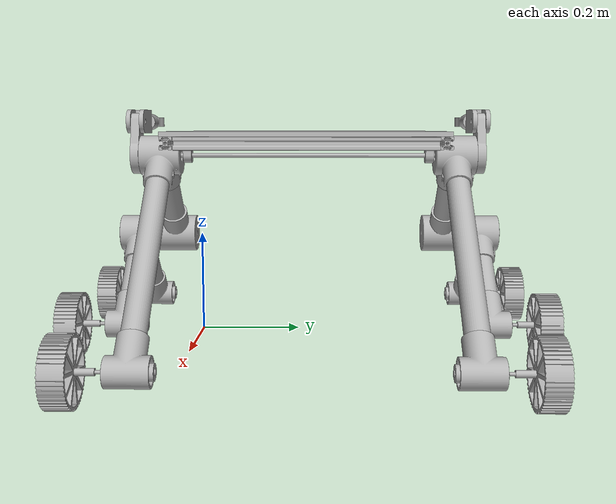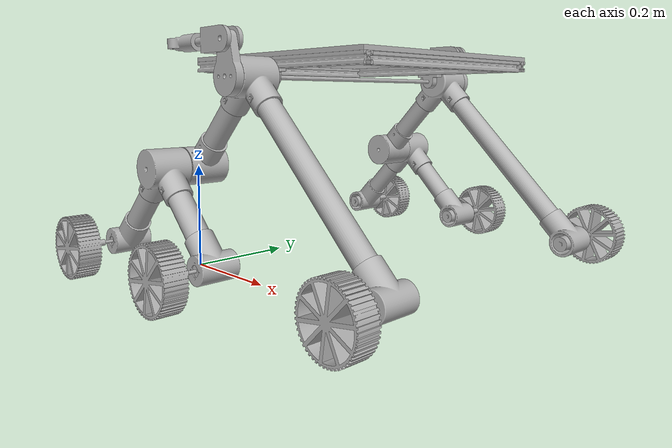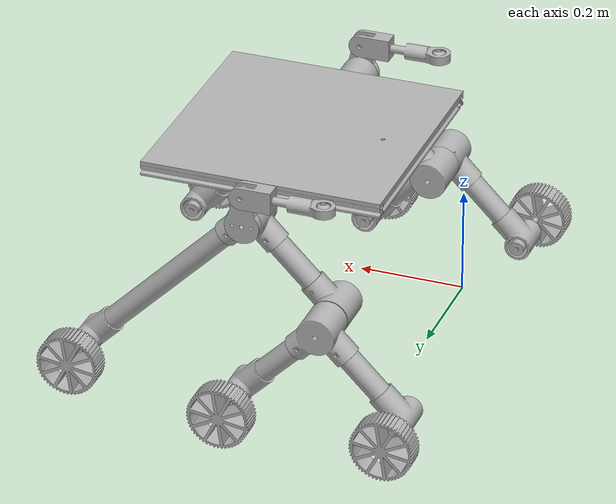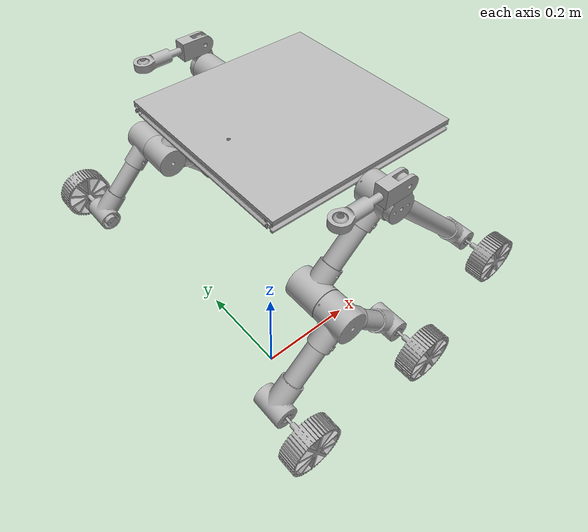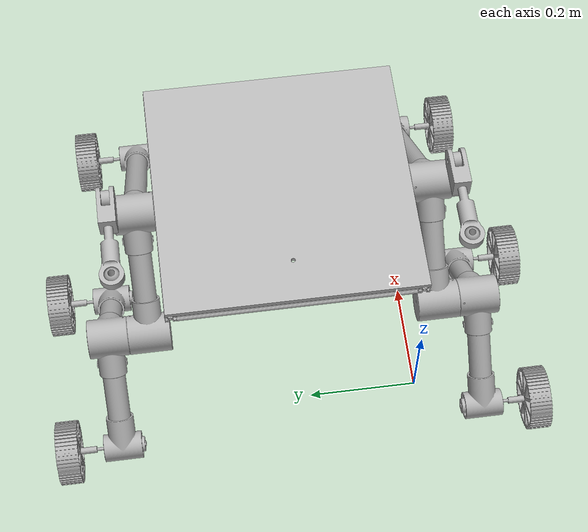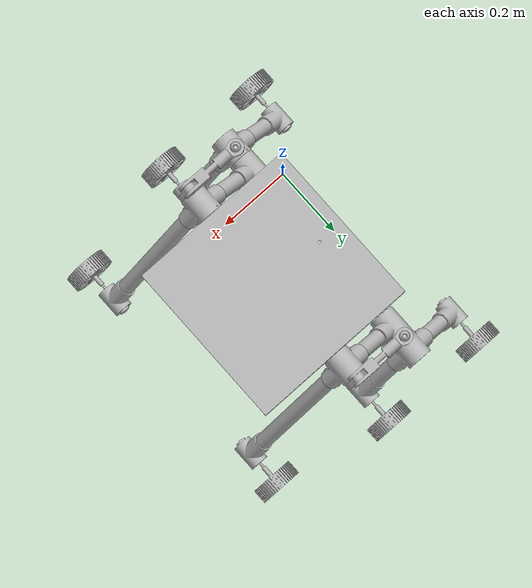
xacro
<?xml version="1.0" ?>
<robot name="urdf_rover_isro" xmlns:xacro="http://www.ros.org/wiki/xacro">

<xacro:include filename="$(find urdf_rover_isro_description)/urdf/materials.xacro" />
<xacro:include filename="$(find urdf_rover_isro_description)/urdf/urdf_rover_isro.trans" />
<xacro:include filename="$(find urdf_rover_isro_description)/urdf/urdf_rover_isro.gazebo" />
<link name="base_link">
  <inertial>
    <origin xyz="0.230216662163733 0.22389389752371083 0.40789724146038964" rpy="0 0 0"/>
    <mass value="12.713843327701671"/>
    <inertia ixx="0.214667" iyy="0.214596" izz="0.429128" ixy="0.0" iyz="-0.0" ixz="0.0"/>
  </inertial>
  <visual>
    <origin xyz="0 0 0" rpy="0 0 0"/>
    <geometry>
      <mesh filename="package://urdf_rover_isro_description/meshes/base_link.stl" scale="0.001 0.001 0.001"/>
    </geometry>
    <material name="silver"/>
  </visual>
  <collision>
    <origin xyz="0 0 0" rpy="0 0 0"/>
    <geometry>
      <mesh filename="package://urdf_rover_isro_description/meshes/base_link.stl" scale="0.001 0.001 0.001"/>
    </geometry>
  </collision>
</link>

<link name="link_1_2_1">
  <inertial>
    <origin xyz="-0.22499959979311035 0.009999796254077679 -0.00999975853961066" rpy="0 0 0"/>
    <mass value="0.1997636911709439"/>
    <inertia ixx="1.7e-05" iyy="0.003379" izz="0.003379" ixy="0.0" iyz="-0.0" ixz="0.0"/>
  </inertial>
  <visual>
    <origin xyz="-0.455179 0.001106 -0.403897" rpy="0 0 0"/>
    <geometry>
      <mesh filename="package://urdf_rover_isro_description/meshes/link_1_2_1.stl" scale="0.001 0.001 0.001"/>
    </geometry>
    <material name="silver"/>
  </visual>
  <collision>
    <origin xyz="-0.455179 0.001106 -0.403897" rpy="0 0 0"/>
    <geometry>
      <mesh filename="package://urdf_rover_isro_description/meshes/link_1_2_1.stl" scale="0.001 0.001 0.001"/>
    </geometry>
  </collision>
</link>

<link name="link_1_1_1">
  <inertial>
    <origin xyz="-0.2249995997931103 -0.00900020374591426 -0.00999975853961027" rpy="0 0 0"/>
    <mass value="0.1997636911709439"/>
    <inertia ixx="1.7e-05" iyy="0.003379" izz="0.003379" ixy="0.0" iyz="-0.0" ixz="-0.0"/>
  </inertial>
  <visual>
    <origin xyz="-0.455179 -0.448894 -0.403897" rpy="0 0 0"/>
    <geometry>
      <mesh filename="package://urdf_rover_isro_description/meshes/link_1_1_1.stl" scale="0.001 0.001 0.001"/>
    </geometry>
    <material name="silver"/>
  </visual>
  <collision>
    <origin xyz="-0.455179 -0.448894 -0.403897" rpy="0 0 0"/>
    <geometry>
      <mesh filename="package://urdf_rover_isro_description/meshes/link_1_1_1.stl" scale="0.001 0.001 0.001"/>
    </geometry>
  </collision>
</link>

<link name="link_2_1_1">
  <inertial>
    <origin xyz="-0.010292493011922532 -0.20500020374591776 -0.009706865320796954" rpy="0 0 0"/>
    <mass value="0.18200691862241553"/>
    <inertia ixx="0.002557" iyy="1.5e-05" izz="0.002557" ixy="0.0" iyz="-0.0" ixz="0.0"/>
  </inertial>
  <visual>
    <origin xyz="-0.455179 -0.429894 -0.402897" rpy="0 0 0"/>
    <geometry>
      <mesh filename="package://urdf_rover_isro_description/meshes/link_2_1_1.stl" scale="0.001 0.001 0.001"/>
    </geometry>
    <material name="silver"/>
  </visual>
  <collision>
    <origin xyz="-0.455179 -0.429894 -0.402897" rpy="0 0 0"/>
    <geometry>
      <mesh filename="package://urdf_rover_isro_description/meshes/link_2_1_1.stl" scale="0.001 0.001 0.001"/>
    </geometry>
  </collision>
</link>

<link name="link_2_2_1">
  <inertial>
    <origin xyz="0.010007506988074991 -0.20500020374591507 0.0037073482415758696" rpy="0 0 0"/>
    <mass value="0.18200691862241553"/>
    <inertia ixx="0.002557" iyy="1.5e-05" izz="0.002557" ixy="0.0" iyz="0.0" ixz="0.0"/>
  </inertial>
  <visual>
    <origin xyz="-0.005179 -0.429894 -0.389097" rpy="0 0 0"/>
    <geometry>
      <mesh filename="package://urdf_rover_isro_description/meshes/link_2_2_1.stl" scale="0.001 0.001 0.001"/>
    </geometry>
    <material name="silver"/>
  </visual>
  <collision>
    <origin xyz="-0.005179 -0.429894 -0.389097" rpy="0 0 0"/>
    <geometry>
      <mesh filename="package://urdf_rover_isro_description/meshes/link_2_2_1.stl" scale="0.001 0.001 0.001"/>
    </geometry>
  </collision>
</link>

<link name="link_3_1_1">
  <inertial>
    <origin xyz="4.002068623720767e-07 0.00025419193953859706 -0.017105420649761116" rpy="0 0 0"/>
    <mass value="0.08766228088145767"/>
    <inertia ixx="7e-06" iyy="1.6e-05" izz="1.2e-05" ixy="-0.0" iyz="-0.0" ixz="-0.0"/>
  </inertial>
  <visual>
    <origin xyz="-0.230179 -0.008594 -0.389897" rpy="0 0 0"/>
    <geometry>
      <mesh filename="package://urdf_rover_isro_description/meshes/link_3_1_1.stl" scale="0.001 0.001 0.001"/>
    </geometry>
    <material name="silver"/>
  </visual>
  <collision>
    <origin xyz="-0.230179 -0.008594 -0.389897" rpy="0 0 0"/>
    <geometry>
      <mesh filename="package://urdf_rover_isro_description/meshes/link_3_1_1.stl" scale="0.001 0.001 0.001"/>
    </geometry>
  </collision>
</link>

<link name="link_3_2_1">
  <inertial>
    <origin xyz="4.0020686253861015e-07 -0.0014951381464530233 -0.017105420649760894" rpy="0 0 0"/>
    <mass value="0.08766228088145767"/>
    <inertia ixx="7e-06" iyy="1.6e-05" izz="1.2e-05" ixy="-0.0" iyz="-0.0" ixz="-0.0"/>
  </inertial>
  <visual>
    <origin xyz="-0.230179 -0.441513 -0.389897" rpy="0 0 0"/>
    <geometry>
      <mesh filename="package://urdf_rover_isro_description/meshes/link_3_2_1.stl" scale="0.001 0.001 0.001"/>
    </geometry>
    <material name="silver"/>
  </visual>
  <collision>
    <origin xyz="-0.230179 -0.441513 -0.389897" rpy="0 0 0"/>
    <geometry>
      <mesh filename="package://urdf_rover_isro_description/meshes/link_3_2_1.stl" scale="0.001 0.001 0.001"/>
    </geometry>
  </collision>
</link>

<link name="link_4_1">
  <inertial>
    <origin xyz="-0.0015935997931103008 -0.010179203745922655 0.3538972414603902" rpy="0 0 0"/>
    <mass value="0.2367504223745268"/>
    <inertia ixx="0.007103" iyy="2e-06" izz="0.007103" ixy="0.0" iyz="-0.0" ixz="0.0"/>
  </inertial>
  <visual>
    <origin xyz="-0.231773 -0.231773 -0.015" rpy="0 0 0"/>
    <geometry>
      <mesh filename="package://urdf_rover_isro_description/meshes/link_4_1.stl" scale="0.001 0.001 0.001"/>
    </geometry>
    <material name="silver"/>
  </visual>
  <collision>
    <origin xyz="-0.231773 -0.231773 -0.015" rpy="0 0 0"/>
    <geometry>
      <mesh filename="package://urdf_rover_isro_description/meshes/link_4_1.stl" scale="0.001 0.001 0.001"/>
    </geometry>
  </collision>
</link>

<link name="link_5_1_1">
  <inertial>
    <origin xyz="-3.569116684462581e-05 0.0395762497735464 -0.0064987111071231896" rpy="0 0 0"/>
    <mass value="2.6253806933697463"/>
    <inertia ixx="0.002214" iyy="0.002535" izz="0.002323" ixy="0.0" iyz="7e-06" ixz="-2e-06"/>
  </inertial>
  <visual>
    <origin xyz="-0.230179 0.078406 -0.368897" rpy="0 0 0"/>
    <geometry>
      <mesh filename="package://urdf_rover_isro_description/meshes/link_5_1_1.stl" scale="0.001 0.001 0.001"/>
    </geometry>
    <material name="silver"/>
  </visual>
  <collision>
    <origin xyz="-0.230179 0.078406 -0.368897" rpy="0 0 0"/>
    <geometry>
      <mesh filename="package://urdf_rover_isro_description/meshes/link_5_1_1.stl" scale="0.001 0.001 0.001"/>
    </geometry>
  </collision>
</link>

<link name="link_5_2_1">
  <inertial>
    <origin xyz="3.649158062396518e-05 -0.035576657265391665 -0.006498711107121136" rpy="0 0 0"/>
    <mass value="2.6253806933697463"/>
    <inertia ixx="0.002214" iyy="0.002535" izz="0.002323" ixy="0.0" iyz="-7e-06" ixz="2e-06"/>
  </inertial>
  <visual>
    <origin xyz="-0.230179 -0.521594 -0.368897" rpy="0 0 0"/>
    <geometry>
      <mesh filename="package://urdf_rover_isro_description/meshes/link_5_2_1.stl" scale="0.001 0.001 0.001"/>
    </geometry>
    <material name="silver"/>
  </visual>
  <collision>
    <origin xyz="-0.230179 -0.521594 -0.368897" rpy="0 0 0"/>
    <geometry>
      <mesh filename="package://urdf_rover_isro_description/meshes/link_5_2_1.stl" scale="0.001 0.001 0.001"/>
    </geometry>
  </collision>
</link>

<link name="link_6_1_1">
  <inertial>
    <origin xyz="-0.05303265343972052 -3.7337639254009236e-07 -0.0530328121862208" rpy="0 0 0"/>
    <mass value="0.45685433067584397"/>
    <inertia ixx="0.000553" iyy="0.00094" izz="0.000553" ixy="-0.0" iyz="-0.0" ixz="-0.000387"/>
  </inertial>
  <visual>
    <origin xyz="-0.202147 0.038416 -0.340865" rpy="0 0 0"/>
    <geometry>
      <mesh filename="package://urdf_rover_isro_description/meshes/link_6_1_1.stl" scale="0.001 0.001 0.001"/>
    </geometry>
    <material name="silver"/>
  </visual>
  <collision>
    <origin xyz="-0.202147 0.038416 -0.340865" rpy="0 0 0"/>
    <geometry>
      <mesh filename="package://urdf_rover_isro_description/meshes/link_6_1_1.stl" scale="0.001 0.001 0.001"/>
    </geometry>
  </collision>
</link>

<link name="link_6_2_1">
  <inertial>
    <origin xyz="-0.05303335241152124 -1.1893068779800231e-07 -0.05303337962480159" rpy="0 0 0"/>
    <mass value="0.45685433067584397"/>
    <inertia ixx="0.000553" iyy="0.00094" izz="0.000553" ixy="0.0" iyz="-0.0" ixz="-0.000387"/>
  </inertial>
  <visual>
    <origin xyz="-0.202383 -0.485599 -0.340997" rpy="0 0 0"/>
    <geometry>
      <mesh filename="package://urdf_rover_isro_description/meshes/link_6_2_1.stl" scale="0.001 0.001 0.001"/>
    </geometry>
    <material name="silver"/>
  </visual>
  <collision>
    <origin xyz="-0.202383 -0.485599 -0.340997" rpy="0 0 0"/>
    <geometry>
      <mesh filename="package://urdf_rover_isro_description/meshes/link_6_2_1.stl" scale="0.001 0.001 0.001"/>
    </geometry>
  </collision>
</link>

<link name="link_7_1_1">
  <inertial>
    <origin xyz="-0.022490879758291102 -0.000462649270838833 -0.02248793904133345" rpy="0 0 0"/>
    <mass value="2.3993289633379664"/>
    <inertia ixx="0.001993" iyy="0.001802" izz="0.001993" ixy="-2e-06" iyz="-3e-06" ixz="-0.000152"/>
  </inertial>
  <visual>
    <origin xyz="-0.096317 -0.485599 -0.234931" rpy="0 0 0"/>
    <geometry>
      <mesh filename="package://urdf_rover_isro_description/meshes/link_7_1_1.stl" scale="0.001 0.001 0.001"/>
    </geometry>
    <material name="silver"/>
  </visual>
  <collision>
    <origin xyz="-0.096317 -0.485599 -0.234931" rpy="0 0 0"/>
    <geometry>
      <mesh filename="package://urdf_rover_isro_description/meshes/link_7_1_1.stl" scale="0.001 0.001 0.001"/>
    </geometry>
  </collision>
</link>

<link name="link_7_2_1">
  <inertial>
    <origin xyz="-0.022487212856252103 0.0004621569637583839 -0.022490339532990927" rpy="0 0 0"/>
    <mass value="2.399328963337966"/>
    <inertia ixx="0.001993" iyy="0.001802" izz="0.001993" ixy="3e-06" iyz="2e-06" ixz="-0.000152"/>
  </inertial>
  <visual>
    <origin xyz="-0.096081 0.038416 -0.234799" rpy="0 0 0"/>
    <geometry>
      <mesh filename="package://urdf_rover_isro_description/meshes/link_7_2_1.stl" scale="0.001 0.001 0.001"/>
    </geometry>
    <material name="silver"/>
  </visual>
  <collision>
    <origin xyz="-0.096081 0.038416 -0.234799" rpy="0 0 0"/>
    <geometry>
      <mesh filename="package://urdf_rover_isro_description/meshes/link_7_2_1.stl" scale="0.001 0.001 0.001"/>
    </geometry>
  </collision>
</link>

<link name="link_5_3_1">
  <inertial>
    <origin xyz="3.563769263327521e-05 0.036413258724036224 -0.006499433461893883" rpy="0 0 0"/>
    <mass value="2.6253806933697463"/>
    <inertia ixx="0.002214" iyy="0.002535" izz="0.002323" ixy="0.0" iyz="-7e-06" ixz="2e-06"/>
  </inertial>
  <visual>
    <origin xyz="-0.071533 -0.523599 -0.210147" rpy="0 0 0"/>
    <geometry>
      <mesh filename="package://urdf_rover_isro_description/meshes/link_5_3_1.stl" scale="0.001 0.001 0.001"/>
    </geometry>
    <material name="silver"/>
  </visual>
  <collision>
    <origin xyz="-0.071533 -0.523599 -0.210147" rpy="0 0 0"/>
    <geometry>
      <mesh filename="package://urdf_rover_isro_description/meshes/link_5_3_1.stl" scale="0.001 0.001 0.001"/>
    </geometry>
  </collision>
</link>

<link name="link_5_4_1">
  <inertial>
    <origin xyz="-3.584608303289216e-05 -0.03641375103111669 -0.006498866023313538" rpy="0 0 0"/>
    <mass value="2.6253806933697463"/>
    <inertia ixx="0.002214" iyy="0.002535" izz="0.002323" ixy="0.0" iyz="7e-06" ixz="-2e-06"/>
  </inertial>
  <visual>
    <origin xyz="-0.071297 0.076416 -0.210015" rpy="0 0 0"/>
    <geometry>
      <mesh filename="package://urdf_rover_isro_description/meshes/link_5_4_1.stl" scale="0.001 0.001 0.001"/>
    </geometry>
    <material name="silver"/>
  </visual>
  <collision>
    <origin xyz="-0.071297 0.076416 -0.210015" rpy="0 0 0"/>
    <geometry>
      <mesh filename="package://urdf_rover_isro_description/meshes/link_5_4_1.stl" scale="0.001 0.001 0.001"/>
    </geometry>
  </collision>
</link>

<link name="link_6_3_1">
  <inertial>
    <origin xyz="-0.053033206299511956 -2.0294126035214077e-07 -0.05303310197957431" rpy="0 0 0"/>
    <mass value="0.45685433067584397"/>
    <inertia ixx="0.000553" iyy="0.00094" izz="0.000553" ixy="0.0" iyz="0.0" ixz="-0.000387"/>
  </inertial>
  <visual>
    <origin xyz="-0.043736 -0.559594 -0.182246" rpy="0 0 0"/>
    <geometry>
      <mesh filename="package://urdf_rover_isro_description/meshes/link_6_3_1.stl" scale="0.001 0.001 0.001"/>
    </geometry>
    <material name="silver"/>
  </visual>
  <collision>
    <origin xyz="-0.043736 -0.559594 -0.182246" rpy="0 0 0"/>
    <geometry>
      <mesh filename="package://urdf_rover_isro_description/meshes/link_6_3_1.stl" scale="0.001 0.001 0.001"/>
    </geometry>
  </collision>
</link>

<link name="link_6_4_1">
  <inertial>
    <origin xyz="-0.05303280835590869 -2.0455058584445407e-07 -0.05303296710241126" rpy="0 0 0"/>
    <mass value="0.45685433067584397"/>
    <inertia ixx="0.000553" iyy="0.00094" izz="0.000553" ixy="0.0" iyz="0.0" ixz="-0.000387"/>
  </inertial>
  <visual>
    <origin xyz="-0.043265 0.112406 -0.181983" rpy="0 0 0"/>
    <geometry>
      <mesh filename="package://urdf_rover_isro_description/meshes/link_6_4_1.stl" scale="0.001 0.001 0.001"/>
    </geometry>
    <material name="silver"/>
  </visual>
  <collision>
    <origin xyz="-0.043265 0.112406 -0.181983" rpy="0 0 0"/>
    <geometry>
      <mesh filename="package://urdf_rover_isro_description/meshes/link_6_4_1.stl" scale="0.001 0.001 0.001"/>
    </geometry>
  </collision>
</link>

<link name="link_6_5_1">
  <inertial>
    <origin xyz="0.05303259996550948 -2.877564955205969e-07 -0.0530325345409913" rpy="0 0 0"/>
    <mass value="0.45685433067584397"/>
    <inertia ixx="0.000553" iyy="0.00094" izz="0.000553" ixy="0.0" iyz="-0.0" ixz="0.000387"/>
  </inertial>
  <visual>
    <origin xyz="-0.099565 -0.559589 -0.182114" rpy="0 0 0"/>
    <geometry>
      <mesh filename="package://urdf_rover_isro_description/meshes/link_6_5_1.stl" scale="0.001 0.001 0.001"/>
    </geometry>
    <material name="silver"/>
  </visual>
  <collision>
    <origin xyz="-0.099565 -0.559589 -0.182114" rpy="0 0 0"/>
    <geometry>
      <mesh filename="package://urdf_rover_isro_description/meshes/link_6_5_1.stl" scale="0.001 0.001 0.001"/>
    </geometry>
  </collision>
</link>

<link name="link_6_6_1">
  <inertial>
    <origin xyz="0.05303299790911274 -2.89365819389209e-07 -0.05303253454099402" rpy="0 0 0"/>
    <mass value="0.45685433067584397"/>
    <inertia ixx="0.000553" iyy="0.00094" izz="0.000553" ixy="-0.0" iyz="0.0" ixz="0.000387"/>
  </inertial>
  <visual>
    <origin xyz="-0.099094 0.112411 -0.182114" rpy="0 0 0"/>
    <geometry>
      <mesh filename="package://urdf_rover_isro_description/meshes/link_6_6_1.stl" scale="0.001 0.001 0.001"/>
    </geometry>
    <material name="silver"/>
  </visual>
  <collision>
    <origin xyz="-0.099094 0.112411 -0.182114" rpy="0 0 0"/>
    <geometry>
      <mesh filename="package://urdf_rover_isro_description/meshes/link_6_6_1.stl" scale="0.001 0.001 0.001"/>
    </geometry>
  </collision>
</link>

<link name="link_8_1_1">
  <inertial>
    <origin xyz="0.1325826657087874 -2.8856115676795246e-07 -0.1325828925082898" rpy="0 0 0"/>
    <mass value="1.1821626009802255"/>
    <inertia ixx="0.007247" iyy="0.014067" izz="0.007247" ixy="0.0" iyz="0.0" ixz="0.00682"/>
  </inertial>
  <visual>
    <origin xyz="-0.257976 0.038411 -0.340997" rpy="0 0 0"/>
    <geometry>
      <mesh filename="package://urdf_rover_isro_description/meshes/link_8_1_1.stl" scale="0.001 0.001 0.001"/>
    </geometry>
    <material name="silver"/>
  </visual>
  <collision>
    <origin xyz="-0.257976 0.038411 -0.340997" rpy="0 0 0"/>
    <geometry>
      <mesh filename="package://urdf_rover_isro_description/meshes/link_8_1_1.stl" scale="0.001 0.001 0.001"/>
    </geometry>
  </collision>
</link>

<link name="link_8_2_1">
  <inertial>
    <origin xyz="0.13258296673698672 -3.411545285159079e-08 -0.1325823250697052" rpy="0 0 0"/>
    <mass value="1.1821626009802255"/>
    <inertia ixx="0.007247" iyy="0.014067" izz="0.007247" ixy="-0.0" iyz="-0.0" ixz="0.00682"/>
  </inertial>
  <visual>
    <origin xyz="-0.258211 -0.485604 -0.340865" rpy="0 0 0"/>
    <geometry>
      <mesh filename="package://urdf_rover_isro_description/meshes/link_8_2_1.stl" scale="0.001 0.001 0.001"/>
    </geometry>
    <material name="silver"/>
  </visual>
  <collision>
    <origin xyz="-0.258211 -0.485604 -0.340865" rpy="0 0 0"/>
    <geometry>
      <mesh filename="package://urdf_rover_isro_description/meshes/link_8_2_1.stl" scale="0.001 0.001 0.001"/>
    </geometry>
  </collision>
</link>

<link name="link_9_1_1">
  <inertial>
    <origin xyz="0.009038220483490345 -0.0017749917652077549 -0.009038447035424488" rpy="0 0 0"/>
    <mass value="0.6368788758860523"/>
    <inertia ixx="0.000489" iyy="0.000495" izz="0.000489" ixy="1e-05" iyz="-1e-05" ixz="8.3e-05"/>
  </inertial>
  <visual>
    <origin xyz="-0.523141 0.038411 -0.075832" rpy="0 0 0"/>
    <geometry>
      <mesh filename="package://urdf_rover_isro_description/meshes/link_9_1_1.stl" scale="0.001 0.001 0.001"/>
    </geometry>
    <material name="silver"/>
  </visual>
  <collision>
    <origin xyz="-0.523141 0.038411 -0.075832" rpy="0 0 0"/>
    <geometry>
      <mesh filename="package://urdf_rover_isro_description/meshes/link_9_1_1.stl" scale="0.001 0.001 0.001"/>
    </geometry>
  </collision>
</link>

<link name="link_9_2_1">
  <inertial>
    <origin xyz="0.009038039800329023 -0.0017749925698704039 -0.009037576184642293" rpy="0 0 0"/>
    <mass value="0.6368788758860523"/>
    <inertia ixx="0.000489" iyy="0.000495" izz="0.000489" ixy="1e-05" iyz="-1e-05" ixz="8.3e-05"/>
  </inertial>
  <visual>
    <origin xyz="-0.20516 0.112411 -0.076048" rpy="0 0 0"/>
    <geometry>
      <mesh filename="package://urdf_rover_isro_description/meshes/link_9_2_1.stl" scale="0.001 0.001 0.001"/>
    </geometry>
    <material name="silver"/>
  </visual>
  <collision>
    <origin xyz="-0.20516 0.112411 -0.076048" rpy="0 0 0"/>
    <geometry>
      <mesh filename="package://urdf_rover_isro_description/meshes/link_9_2_1.stl" scale="0.001 0.001 0.001"/>
    </geometry>
  </collision>
</link>

<link name="link_9_3_1">
  <inertial>
    <origin xyz="-0.009037849999556855 -0.0017749077546369701 -0.009038008993627583" rpy="0 0 0"/>
    <mass value="0.6368788758860523"/>
    <inertia ixx="0.000489" iyy="0.000495" izz="0.000489" ixy="-1e-05" iyz="-1e-05" ixz="-8.3e-05"/>
  </inertial>
  <visual>
    <origin xyz="0.062801 0.112406 -0.075917" rpy="0 0 0"/>
    <geometry>
      <mesh filename="package://urdf_rover_isro_description/meshes/link_9_3_1.stl" scale="0.001 0.001 0.001"/>
    </geometry>
    <material name="silver"/>
  </visual>
  <collision>
    <origin xyz="0.062801 0.112406 -0.075917" rpy="0 0 0"/>
    <geometry>
      <mesh filename="package://urdf_rover_isro_description/meshes/link_9_3_1.stl" scale="0.001 0.001 0.001"/>
    </geometry>
  </collision>
</link>

<link name="link_9_4_1">
  <inertial>
    <origin xyz="-0.00903824819072823 0.001774500262788803 -0.00903814362322286" rpy="0 0 0"/>
    <mass value="0.6368788758860523"/>
    <inertia ixx="0.000489" iyy="0.000495" izz="0.000489" ixy="1e-05" iyz="1e-05" ixz="-8.3e-05"/>
  </inertial>
  <visual>
    <origin xyz="0.06233 -0.559594 -0.07618" rpy="0 0 0"/>
    <geometry>
      <mesh filename="package://urdf_rover_isro_description/meshes/link_9_4_1.stl" scale="0.001 0.001 0.001"/>
    </geometry>
    <material name="silver"/>
  </visual>
  <collision>
    <origin xyz="0.06233 -0.559594 -0.07618" rpy="0 0 0"/>
    <geometry>
      <mesh filename="package://urdf_rover_isro_description/meshes/link_9_4_1.stl" scale="0.001 0.001 0.001"/>
    </geometry>
  </collision>
</link>

<link name="link_9_5_1">
  <inertial>
    <origin xyz="0.009037641609158042 0.0017744154475557439 -0.009037576432207386" rpy="0 0 0"/>
    <mass value="0.6368788758860523"/>
    <inertia ixx="0.000489" iyy="0.000495" izz="0.000489" ixy="-1e-05" iyz="1e-05" ixz="8.3e-05"/>
  </inertial>
  <visual>
    <origin xyz="-0.205631 -0.559589 -0.076048" rpy="0 0 0"/>
    <geometry>
      <mesh filename="package://urdf_rover_isro_description/meshes/link_9_5_1.stl" scale="0.001 0.001 0.001"/>
    </geometry>
    <material name="silver"/>
  </visual>
  <collision>
    <origin xyz="-0.205631 -0.559589 -0.076048" rpy="0 0 0"/>
    <geometry>
      <mesh filename="package://urdf_rover_isro_description/meshes/link_9_5_1.stl" scale="0.001 0.001 0.001"/>
    </geometry>
  </collision>
</link>

<link name="link_9_6_1">
  <inertial>
    <origin xyz="0.009038521264121968 0.0017746690885979688 -0.009037879844407876" rpy="0 0 0"/>
    <mass value="0.6368788758860523"/>
    <inertia ixx="0.000489" iyy="0.000495" izz="0.000489" ixy="-1e-05" iyz="1e-05" ixz="8.3e-05"/>
  </inertial>
  <visual>
    <origin xyz="-0.523376 -0.485604 -0.0757" rpy="0 0 0"/>
    <geometry>
      <mesh filename="package://urdf_rover_isro_description/meshes/link_9_6_1.stl" scale="0.001 0.001 0.001"/>
    </geometry>
    <material name="silver"/>
  </visual>
  <collision>
    <origin xyz="-0.523376 -0.485604 -0.0757" rpy="0 0 0"/>
    <geometry>
      <mesh filename="package://urdf_rover_isro_description/meshes/link_9_6_1.stl" scale="0.001 0.001 0.001"/>
    </geometry>
  </collision>
</link>

<link name="link_10_1_1">
  <inertial>
    <origin xyz="1.1558183186932691e-07 -0.031680347767904626 2.199017724649477e-07" rpy="0 0 0"/>
    <mass value="0.3901820621596084"/>
    <inertia ixx="0.000191" iyy="4.3e-05" izz="0.000191" ixy="-0.0" iyz="0.0" ixz="0.0"/>
  </inertial>
  <visual>
    <origin xyz="0.080008 -0.589494 -0.058502" rpy="0 0 0"/>
    <geometry>
      <mesh filename="package://urdf_rover_isro_description/meshes/link_10_1_1.stl" scale="0.001 0.001 0.001"/>
    </geometry>
    <material name="silver"/>
  </visual>
  <collision>
    <origin xyz="0.080008 -0.589494 -0.058502" rpy="0 0 0"/>
    <geometry>
      <mesh filename="package://urdf_rover_isro_description/meshes/link_10_1_1.stl" scale="0.001 0.001 0.001"/>
    </geometry>
  </collision>
</link>

<link name="link_10_2_1">
  <inertial>
    <origin xyz="2.780841647509469e-07 -0.031680432583136464 -2.1265964621902667e-07" rpy="0 0 0"/>
    <mass value="0.3901820621596084"/>
    <inertia ixx="0.000191" iyy="4.3e-05" izz="0.000191" ixy="-0.0" iyz="0.0" ixz="0.0"/>
  </inertial>
  <visual>
    <origin xyz="-0.223308 -0.589489 -0.058371" rpy="0 0 0"/>
    <geometry>
      <mesh filename="package://urdf_rover_isro_description/meshes/link_10_2_1.stl" scale="0.001 0.001 0.001"/>
    </geometry>
    <material name="silver"/>
  </visual>
  <collision>
    <origin xyz="-0.223308 -0.589489 -0.058371" rpy="0 0 0"/>
    <geometry>
      <mesh filename="package://urdf_rover_isro_description/meshes/link_10_2_1.stl" scale="0.001 0.001 0.001"/>
    </geometry>
  </collision>
</link>

<link name="link_10_3_1">
  <inertial>
    <origin xyz="1.577391288698493e-07 -0.03168017894209413 4.839281531540673e-07" rpy="0 0 0"/>
    <mass value="0.3901820621596084"/>
    <inertia ixx="0.000191" iyy="4.3e-05" izz="0.000191" ixy="-0.0" iyz="0.0" ixz="0.0"/>
  </inertial>
  <visual>
    <origin xyz="-0.541054 -0.515504 -0.058022" rpy="0 0 0"/>
    <geometry>
      <mesh filename="package://urdf_rover_isro_description/meshes/link_10_3_1.stl" scale="0.001 0.001 0.001"/>
    </geometry>
    <material name="silver"/>
  </visual>
  <collision>
    <origin xyz="-0.541054 -0.515504 -0.058022" rpy="0 0 0"/>
    <geometry>
      <mesh filename="package://urdf_rover_isro_description/meshes/link_10_3_1.stl" scale="0.001 0.001 0.001"/>
    </geometry>
  </collision>
</link>

<link name="link_10_4_1">
  <inertial>
    <origin xyz="-4.864745627025657e-07 0.03167994027605507 3.547789329191864e-07" rpy="0 0 0"/>
    <mass value="0.3901820621596084"/>
    <inertia ixx="0.000191" iyy="4.3e-05" izz="0.000191" ixy="0.0" iyz="-0.0" ixz="0.0"/>
  </inertial>
  <visual>
    <origin xyz="0.080478 0.142306 -0.058239" rpy="0 0 0"/>
    <geometry>
      <mesh filename="package://urdf_rover_isro_description/meshes/link_10_4_1.stl" scale="0.001 0.001 0.001"/>
    </geometry>
    <material name="silver"/>
  </visual>
  <collision>
    <origin xyz="0.080478 0.142306 -0.058239" rpy="0 0 0"/>
    <geometry>
      <mesh filename="package://urdf_rover_isro_description/meshes/link_10_4_1.stl" scale="0.001 0.001 0.001"/>
    </geometry>
  </collision>
</link>

<link name="link_10_5_1">
  <inertial>
    <origin xyz="-3.239722314862803e-07 0.03167985546082153 -2.126596494941846e-07" rpy="0 0 0"/>
    <mass value="0.3901820621596084"/>
    <inertia ixx="0.000191" iyy="4.3e-05" izz="0.000191" ixy="0.0" iyz="-0.0" ixz="0.0"/>
  </inertial>
  <visual>
    <origin xyz="-0.222838 0.142311 -0.058371" rpy="0 0 0"/>
    <geometry>
      <mesh filename="package://urdf_rover_isro_description/meshes/link_10_5_1.stl" scale="0.001 0.001 0.001"/>
    </geometry>
    <material name="silver"/>
  </visual>
  <collision>
    <origin xyz="-0.222838 0.142311 -0.058371" rpy="0 0 0"/>
    <geometry>
      <mesh filename="package://urdf_rover_isro_description/meshes/link_10_5_1.stl" scale="0.001 0.001 0.001"/>
    </geometry>
  </collision>
</link>

<link name="link_10_6_1">
  <inertial>
    <origin xyz="-1.4328907049776518e-07 0.03167985626548429 -8.351043139648295e-08" rpy="0 0 0"/>
    <mass value="0.3901820621596084"/>
    <inertia ixx="0.000191" iyy="4.3e-05" izz="0.000191" ixy="0.0" iyz="-0.0" ixz="0.0"/>
  </inertial>
  <visual>
    <origin xyz="-0.540819 0.068311 -0.058154" rpy="0 0 0"/>
    <geometry>
      <mesh filename="package://urdf_rover_isro_description/meshes/link_10_6_1.stl" scale="0.001 0.001 0.001"/>
    </geometry>
    <material name="silver"/>
  </visual>
  <collision>
    <origin xyz="-0.540819 0.068311 -0.058154" rpy="0 0 0"/>
    <geometry>
      <mesh filename="package://urdf_rover_isro_description/meshes/link_10_6_1.stl" scale="0.001 0.001 0.001"/>
    </geometry>
  </collision>
</link>

<link name="link_11_1_1">
  <inertial>
    <origin xyz="-4.864745516697244e-07 -0.04963151276613509 3.5477892148388923e-07" rpy="0 0 0"/>
    <mass value="1.4046734177043425"/>
    <inertia ixx="0.001378" iyy="0.002347" izz="0.001378" ixy="0.0" iyz="-0.0" ixz="-0.0"/>
  </inertial>
  <visual>
    <origin xyz="0.080478 0.161306 -0.058239" rpy="0 0 0"/>
    <geometry>
      <mesh filename="package://urdf_rover_isro_description/meshes/link_11_1_1.stl" scale="0.001 0.001 0.001"/>
    </geometry>
    <material name="silver"/>
  </visual>
  <collision>
    <origin xyz="0.080478 0.161306 -0.058239" rpy="0 0 0"/>
    <geometry>
      <mesh filename="package://urdf_rover_isro_description/meshes/link_11_1_1.stl" scale="0.001 0.001 0.001"/>
    </geometry>
  </collision>
</link>

<link name="link_11_2_1">
  <inertial>
    <origin xyz="-3.239722205228279e-07 -0.04963159758136865 -2.1265965839678547e-07" rpy="0 0 0"/>
    <mass value="1.4046734177043425"/>
    <inertia ixx="0.001378" iyy="0.002347" izz="0.001378" ixy="0.0" iyz="-0.0" ixz="-0.0"/>
  </inertial>
  <visual>
    <origin xyz="-0.222838 0.161311 -0.058371" rpy="0 0 0"/>
    <geometry>
      <mesh filename="package://urdf_rover_isro_description/meshes/link_11_2_1.stl" scale="0.001 0.001 0.001"/>
    </geometry>
    <material name="silver"/>
  </visual>
  <collision>
    <origin xyz="-0.222838 0.161311 -0.058371" rpy="0 0 0"/>
    <geometry>
      <mesh filename="package://urdf_rover_isro_description/meshes/link_11_2_1.stl" scale="0.001 0.001 0.001"/>
    </geometry>
  </collision>
</link>

<link name="link_11_3_1">
  <inertial>
    <origin xyz="-1.4328905995064645e-07 -0.049631596776706005 -8.351044203380731e-08" rpy="0 0 0"/>
    <mass value="1.4046734177043425"/>
    <inertia ixx="0.001378" iyy="0.002347" izz="0.001378" ixy="0.0" iyz="-0.0" ixz="-0.0"/>
  </inertial>
  <visual>
    <origin xyz="-0.540819 0.087311 -0.058154" rpy="0 0 0"/>
    <geometry>
      <mesh filename="package://urdf_rover_isro_description/meshes/link_11_3_1.stl" scale="0.001 0.001 0.001"/>
    </geometry>
    <material name="silver"/>
  </visual>
  <collision>
    <origin xyz="-0.540819 0.087311 -0.058154" rpy="0 0 0"/>
    <geometry>
      <mesh filename="package://urdf_rover_isro_description/meshes/link_11_3_1.stl" scale="0.001 0.001 0.001"/>
    </geometry>
  </collision>
</link>

<link name="link_11_4_1">
  <inertial>
    <origin xyz="1.5773913986105725e-07 0.049631274100096046 4.839281424959263e-07" rpy="0 0 0"/>
    <mass value="1.4046734177043425"/>
    <inertia ixx="0.001378" iyy="0.002347" izz="0.001378" ixy="-0.0" iyz="0.0" ixz="-0.0"/>
  </inertial>
  <visual>
    <origin xyz="-0.541054 -0.534504 -0.058022" rpy="0 0 0"/>
    <geometry>
      <mesh filename="package://urdf_rover_isro_description/meshes/link_11_4_1.stl" scale="0.001 0.001 0.001"/>
    </geometry>
    <material name="silver"/>
  </visual>
  <collision>
    <origin xyz="-0.541054 -0.534504 -0.058022" rpy="0 0 0"/>
    <geometry>
      <mesh filename="package://urdf_rover_isro_description/meshes/link_11_4_1.stl" scale="0.001 0.001 0.001"/>
    </geometry>
  </collision>
</link>

<link name="link_11_5_1">
  <inertial>
    <origin xyz="2.780841756311325e-07 0.04963102045905332 -2.1265965682165655e-07" rpy="0 0 0"/>
    <mass value="1.4046734177043425"/>
    <inertia ixx="0.001378" iyy="0.002347" izz="0.001378" ixy="-0.0" iyz="0.0" ixz="-0.0"/>
  </inertial>
  <visual>
    <origin xyz="-0.223308 -0.608489 -0.058371" rpy="0 0 0"/>
    <geometry>
      <mesh filename="package://urdf_rover_isro_description/meshes/link_11_5_1.stl" scale="0.001 0.001 0.001"/>
    </geometry>
    <material name="silver"/>
  </visual>
  <collision>
    <origin xyz="-0.223308 -0.608489 -0.058371" rpy="0 0 0"/>
    <geometry>
      <mesh filename="package://urdf_rover_isro_description/meshes/link_11_5_1.stl" scale="0.001 0.001 0.001"/>
    </geometry>
  </collision>
</link>

<link name="link_11_6_1">
  <inertial>
    <origin xyz="1.1558184123683368e-07 0.049631105274285714 2.1990174635388993e-07" rpy="0 0 0"/>
    <mass value="1.4046734177043425"/>
    <inertia ixx="0.001378" iyy="0.002347" izz="0.001378" ixy="-0.0" iyz="-0.0" ixz="-0.0"/>
  </inertial>
  <visual>
    <origin xyz="0.080008 -0.608494 -0.058502" rpy="0 0 0"/>
    <geometry>
      <mesh filename="package://urdf_rover_isro_description/meshes/link_11_6_1.stl" scale="0.001 0.001 0.001"/>
    </geometry>
    <material name="silver"/>
  </visual>
  <collision>
    <origin xyz="0.080008 -0.608494 -0.058502" rpy="0 0 0"/>
    <geometry>
      <mesh filename="package://urdf_rover_isro_description/meshes/link_11_6_1.stl" scale="0.001 0.001 0.001"/>
    </geometry>
  </collision>
</link>

<link name="link_12_1_1">
  <inertial>
    <origin xyz="4.0020689681674604e-07 0.007499796254076707 0.015425514865822998" rpy="0 0 0"/>
    <mass value="0.5526677573714563"/>
    <inertia ixx="0.000425" iyy="0.000538" izz="0.000133" ixy="0.0" iyz="0.0" ixz="0.0"/>
  </inertial>
  <visual>
    <origin xyz="-0.230179 -0.521594 -0.368897" rpy="0 0 0"/>
    <geometry>
      <mesh filename="package://urdf_rover_isro_description/meshes/link_12_1_1.stl" scale="0.001 0.001 0.001"/>
    </geometry>
    <material name="silver"/>
  </visual>
  <collision>
    <origin xyz="-0.230179 -0.521594 -0.368897" rpy="0 0 0"/>
    <geometry>
      <mesh filename="package://urdf_rover_isro_description/meshes/link_12_1_1.stl" scale="0.001 0.001 0.001"/>
    </geometry>
  </collision>
</link>

<link name="link_12_2_1">
  <inertial>
    <origin xyz="4.002068967334793e-07 -0.0075002037459222515 0.015425514865820611" rpy="0 0 0"/>
    <mass value="0.5526677573714563"/>
    <inertia ixx="0.000425" iyy="0.000538" izz="0.000133" ixy="0.0" iyz="0.0" ixz="0.0"/>
  </inertial>
  <visual>
    <origin xyz="-0.230179 0.074406 -0.368897" rpy="0 0 0"/>
    <geometry>
      <mesh filename="package://urdf_rover_isro_description/meshes/link_12_2_1.stl" scale="0.001 0.001 0.001"/>
    </geometry>
    <material name="silver"/>
  </visual>
  <collision>
    <origin xyz="-0.230179 0.074406 -0.368897" rpy="0 0 0"/>
    <geometry>
      <mesh filename="package://urdf_rover_isro_description/meshes/link_12_2_1.stl" scale="0.001 0.001 0.001"/>
    </geometry>
  </collision>
</link>

<link name="link_13_1_1">
  <inertial>
    <origin xyz="-0.0708831648573309 0.007621787942947406 4.488659711426868e-05" rpy="0 0 0"/>
    <mass value="0.9861422019088102"/>
    <inertia ixx="0.000183" iyy="0.002818" izz="0.002813" ixy="0.0" iyz="0.0" ixz="3e-06"/>
  </inertial>
  <visual>
    <origin xyz="-0.230179 0.089406 -0.428897" rpy="0 0 0"/>
    <geometry>
      <mesh filename="package://urdf_rover_isro_description/meshes/link_13_1_1.stl" scale="0.001 0.001 0.001"/>
    </geometry>
    <material name="silver"/>
  </visual>
  <collision>
    <origin xyz="-0.230179 0.089406 -0.428897" rpy="0 0 0"/>
    <geometry>
      <mesh filename="package://urdf_rover_isro_description/meshes/link_13_1_1.stl" scale="0.001 0.001 0.001"/>
    </geometry>
  </collision>
</link>

<link name="link_13_2_1">
  <inertial>
    <origin xyz="-0.07088316485733098 -0.007622114836805638 4.488659711676668e-05" rpy="0 0 0"/>
    <mass value="0.9861422019088102"/>
    <inertia ixx="0.000183" iyy="0.002818" izz="0.002813" ixy="0.0" iyz="0.0" ixz="3e-06"/>
  </inertial>
  <visual>
    <origin xyz="-0.230179 -0.536594 -0.428897" rpy="0 0 0"/>
    <geometry>
      <mesh filename="package://urdf_rover_isro_description/meshes/link_13_2_1.stl" scale="0.001 0.001 0.001"/>
    </geometry>
    <material name="silver"/>
  </visual>
  <collision>
    <origin xyz="-0.230179 -0.536594 -0.428897" rpy="0 0 0"/>
    <geometry>
      <mesh filename="package://urdf_rover_isro_description/meshes/link_13_2_1.stl" scale="0.001 0.001 0.001"/>
    </geometry>
  </collision>
</link>

<joint name="rigid_1" type="fixed">
  <origin xyz="0.455179 -0.001106 0.403897" rpy="0 0 0"/>
  <parent link="base_link"/>
  <child link="link_1_2_1"/>
</joint>

<joint name="rigid_2" type="fixed">
  <origin xyz="0.455179 0.448894 0.403897" rpy="0 0 0"/>
  <parent link="base_link"/>
  <child link="link_1_1_1"/>
</joint>

<joint name="rigid_3" type="fixed">
  <origin xyz="0.0 -0.019 -0.001" rpy="0 0 0"/>
  <parent link="link_1_1_1"/>
  <child link="link_2_1_1"/>
</joint>

<joint name="rigid_4" type="fixed">
  <origin xyz="-0.45 -0.019 -0.0148" rpy="0 0 0"/>
  <parent link="link_1_1_1"/>
  <child link="link_2_2_1"/>
</joint>

<joint name="rigid_5" type="fixed">
  <origin xyz="-0.225 0.0097 -0.014" rpy="0 0 0"/>
  <parent link="link_1_2_1"/>
  <child link="link_3_1_1"/>
</joint>

<joint name="rigid_6" type="fixed">
  <origin xyz="-0.225 -0.007381 -0.014" rpy="0 0 0"/>
  <parent link="link_1_1_1"/>
  <child link="link_3_2_1"/>
</joint>

<joint name="rigid_7" type="fixed">
  <origin xyz="0.001594 0.223179 -0.374897" rpy="0 0 0"/>
  <parent link="link_3_1_1"/>
  <child link="link_4_1"/>
</joint>

<joint name="revolute_8" type="continuous">
  <origin xyz="-0.001594 -0.310179 0.353897" rpy="0 0 0"/>
  <parent link="link_4_1"/>
  <child link="link_5_1_1"/>
  <axis xyz="-0.0 -1.0 -0.0"/>
</joint>

<joint name="revolute_9" type="continuous">
  <origin xyz="-0.001594 0.289821 0.353897" rpy="0 0 0"/>
  <parent link="link_4_1"/>
  <child link="link_5_2_1"/>
  <axis xyz="0.0 1.0 0.0"/>
</joint>

<joint name="rigid_10" type="fixed">
  <origin xyz="-0.028032 0.03999 -0.028032" rpy="0 0 0"/>
  <parent link="link_5_1_1"/>
  <child link="link_6_1_1"/>
</joint>

<joint name="rigid_11" type="fixed">
  <origin xyz="-0.027796 -0.035995 -0.0279" rpy="0 0 0"/>
  <parent link="link_5_2_1"/>
  <child link="link_6_2_1"/>
</joint>

<joint name="rigid_12" type="fixed">
  <origin xyz="-0.106066 0.0 -0.106066" rpy="0 0 0"/>
  <parent link="link_6_2_1"/>
  <child link="link_7_1_1"/>
</joint>

<joint name="rigid_13" type="fixed">
  <origin xyz="-0.106066 0.0 -0.106066" rpy="0 0 0"/>
  <parent link="link_6_1_1"/>
  <child link="link_7_2_1"/>
</joint>

<joint name="revolute_14" type="continuous">
  <origin xyz="-0.024784 0.038 -0.024784" rpy="0 0 0"/>
  <parent link="link_7_1_1"/>
  <child link="link_5_3_1"/>
  <axis xyz="-0.0 1.0 0.0"/>
</joint>

<joint name="revolute_15" type="continuous">
  <origin xyz="-0.024784 -0.038 -0.024784" rpy="0 0 0"/>
  <parent link="link_7_2_1"/>
  <child link="link_5_4_1"/>
  <axis xyz="0.0 -1.0 -0.0"/>
</joint>

<joint name="rigid_16" type="fixed">
  <origin xyz="-0.027797 0.035995 -0.027901" rpy="0 0 0"/>
  <parent link="link_5_3_1"/>
  <child link="link_6_3_1"/>
</joint>

<joint name="rigid_17" type="fixed">
  <origin xyz="-0.028032 -0.03599 -0.028032" rpy="0 0 0"/>
  <parent link="link_5_4_1"/>
  <child link="link_6_4_1"/>
</joint>

<joint name="rigid_!8" type="fixed">
  <origin xyz="0.028032 0.03599 -0.028033" rpy="0 0 0"/>
  <parent link="link_5_3_1"/>
  <child link="link_6_5_1"/>
</joint>

<joint name="rigid_19" type="fixed">
  <origin xyz="0.027797 -0.035995 -0.027901" rpy="0 0 0"/>
  <parent link="link_5_4_1"/>
  <child link="link_6_6_1"/>
</joint>

<joint name="rigid_20" type="fixed">
  <origin xyz="0.027797 0.039995 -0.0279" rpy="0 0 0"/>
  <parent link="link_5_1_1"/>
  <child link="link_8_1_1"/>
</joint>

<joint name="rigid_21" type="fixed">
  <origin xyz="0.028032 -0.03599 -0.028032" rpy="0 0 0"/>
  <parent link="link_5_2_1"/>
  <child link="link_8_2_1"/>
</joint>

<joint name="rigid_22" type="fixed">
  <origin xyz="0.265165 0.0 -0.265165" rpy="0 0 0"/>
  <parent link="link_8_1_1"/>
  <child link="link_9_1_1"/>
</joint>

<joint name="rigid_23" type="fixed">
  <origin xyz="0.106066 0.0 -0.106066" rpy="0 0 0"/>
  <parent link="link_6_6_1"/>
  <child link="link_9_2_1"/>
</joint>

<joint name="rigid_24" type="fixed">
  <origin xyz="-0.106066 0.0 -0.106066" rpy="0 0 0"/>
  <parent link="link_6_4_1"/>
  <child link="link_9_3_1"/>
</joint>

<joint name="rigid_25" type="fixed">
  <origin xyz="-0.106066 0.0 -0.106066" rpy="0 0 0"/>
  <parent link="link_6_3_1"/>
  <child link="link_9_4_1"/>
</joint>

<joint name="rigid_26" type="fixed">
  <origin xyz="0.106066 0.0 -0.106066" rpy="0 0 0"/>
  <parent link="link_6_5_1"/>
  <child link="link_9_5_1"/>
</joint>

<joint name="rigid_27" type="fixed">
  <origin xyz="0.265165 0.0 -0.265165" rpy="0 0 0"/>
  <parent link="link_8_2_1"/>
  <child link="link_9_6_1"/>
</joint>

<joint name="rigid_28" type="fixed">
  <origin xyz="-0.017678 0.0299 -0.017678" rpy="0 0 0"/>
  <parent link="link_9_4_1"/>
  <child link="link_10_1_1"/>
</joint>

<joint name="rigid_29" type="fixed">
  <origin xyz="0.017677 0.0299 -0.017677" rpy="0 0 0"/>
  <parent link="link_9_5_1"/>
  <child link="link_10_2_1"/>
</joint>

<joint name="rigid_30" type="fixed">
  <origin xyz="0.017678 0.0299 -0.017678" rpy="0 0 0"/>
  <parent link="link_9_6_1"/>
  <child link="link_10_3_1"/>
</joint>

<joint name="rigid_31" type="fixed">
  <origin xyz="-0.017677 -0.0299 -0.017678" rpy="0 0 0"/>
  <parent link="link_9_3_1"/>
  <child link="link_10_4_1"/>
</joint>

<joint name="rigid_32" type="fixed">
  <origin xyz="0.017678 -0.0299 -0.017677" rpy="0 0 0"/>
  <parent link="link_9_2_1"/>
  <child link="link_10_5_1"/>
</joint>

<joint name="rigid_33" type="fixed">
  <origin xyz="0.017678 -0.0299 -0.017678" rpy="0 0 0"/>
  <parent link="link_9_1_1"/>
  <child link="link_10_6_1"/>
</joint>

<joint name="revolute_34" type="continuous">
  <origin xyz="0.0 -0.019 0.0" rpy="0 0 0"/>
  <parent link="link_10_4_1"/>
  <child link="link_11_1_1"/>
  <axis xyz="0.0 -1.0 -0.0"/>
</joint>

<joint name="revolute_35" type="continuous">
  <origin xyz="0.0 -0.019 0.0" rpy="0 0 0"/>
  <parent link="link_10_5_1"/>
  <child link="link_11_2_1"/>
  <axis xyz="0.0 -1.0 0.0"/>
</joint>

<joint name="revolute_36" type="continuous">
  <origin xyz="0.0 -0.019 0.0" rpy="0 0 0"/>
  <parent link="link_10_6_1"/>
  <child link="link_11_3_1"/>
  <axis xyz="0.0 -1.0 0.0"/>
</joint>

<joint name="revolute_37" type="continuous">
  <origin xyz="0.0 0.019 0.0" rpy="0 0 0"/>
  <parent link="link_10_3_1"/>
  <child link="link_11_4_1"/>
  <axis xyz="0.0 1.0 0.0"/>
</joint>

<joint name="revolute_38" type="continuous">
  <origin xyz="0.0 0.019 0.0" rpy="0 0 0"/>
  <parent link="link_10_2_1"/>
  <child link="link_11_5_1"/>
  <axis xyz="0.0 1.0 0.0"/>
</joint>

<joint name="revolute_39" type="continuous">
  <origin xyz="0.0 0.019 0.0" rpy="0 0 0"/>
  <parent link="link_10_1_1"/>
  <child link="link_11_6_1"/>
  <axis xyz="-0.0 1.0 -0.0"/>
</joint>

<joint name="rigid_40" type="fixed">
  <origin xyz="0.0 0.0 0.0" rpy="0 0 0"/>
  <parent link="link_5_2_1"/>
  <child link="link_12_1_1"/>
</joint>

<joint name="rigid_46" type="fixed">
  <origin xyz="0.0 0.004 0.0" rpy="0 0 0"/>
  <parent link="link_5_1_1"/>
  <child link="link_12_2_1"/>
</joint>

<joint name="revolute_47" type="continuous">
  <origin xyz="0.0 -0.015 0.06" rpy="0 0 0"/>
  <parent link="link_12_2_1"/>
  <child link="link_13_1_1"/>
  <axis xyz="0.0 1.0 0.0"/>
</joint>

<joint name="revolute_48" type="continuous">
  <origin xyz="0.0 0.015 0.06" rpy="0 0 0"/>
  <parent link="link_12_1_1"/>
  <child link="link_13_2_1"/>
  <axis xyz="0.0 1.0 0.0"/>
</joint>

</robot>

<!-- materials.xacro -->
<robot name="urdf_rover_isro" xmlns:xacro="http://www.ros.org/wiki/xacro" >

<material name="silver">
  <color rgba="0.700 0.700 0.700 1.000"/>
</material>

</robot>

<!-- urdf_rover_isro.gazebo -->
<robot name="urdf_rover_isro" xmlns:xacro="http://www.ros.org/wiki/xacro" >

<xacro:property name="body_color" value="Gazebo/Silver" />

<gazebo>
  <plugin name="control" filename="libgazebo_ros_control.so"/>
</gazebo>
<gazebo reference="base_link">
  <material>${body_color}</material>
  <mu1>0.2</mu1>
  <mu2>0.2</mu2>
  <selfCollide>true</selfCollide>
  <gravity>true</gravity>
</gazebo>

<gazebo reference="link_1_2_1">
  <material>${body_color}</material>
  <mu1>0.2</mu1>
  <mu2>0.2</mu2>
  <selfCollide>true</selfCollide>
</gazebo>

<gazebo reference="link_1_1_1">
  <material>${body_color}</material>
  <mu1>0.2</mu1>
  <mu2>0.2</mu2>
  <selfCollide>true</selfCollide>
</gazebo>

<gazebo reference="link_2_1_1">
  <material>${body_color}</material>
  <mu1>0.2</mu1>
  <mu2>0.2</mu2>
  <selfCollide>true</selfCollide>
</gazebo>

<gazebo reference="link_2_2_1">
  <material>${body_color}</material>
  <mu1>0.2</mu1>
  <mu2>0.2</mu2>
  <selfCollide>true</selfCollide>
</gazebo>

<gazebo reference="link_3_1_1">
  <material>${body_color}</material>
  <mu1>0.2</mu1>
  <mu2>0.2</mu2>
  <selfCollide>true</selfCollide>
</gazebo>

<gazebo reference="link_3_2_1">
  <material>${body_color}</material>
  <mu1>0.2</mu1>
  <mu2>0.2</mu2>
  <selfCollide>true</selfCollide>
</gazebo>

<gazebo reference="link_4_1">
  <material>${body_color}</material>
  <mu1>0.2</mu1>
  <mu2>0.2</mu2>
  <selfCollide>true</selfCollide>
</gazebo>

<gazebo reference="link_5_1_1">
  <material>${body_color}</material>
  <mu1>0.2</mu1>
  <mu2>0.2</mu2>
  <selfCollide>true</selfCollide>
</gazebo>

<gazebo reference="link_5_2_1">
  <material>${body_color}</material>
  <mu1>0.2</mu1>
  <mu2>0.2</mu2>
  <selfCollide>true</selfCollide>
</gazebo>

<gazebo reference="link_6_1_1">
  <material>${body_color}</material>
  <mu1>0.2</mu1>
  <mu2>0.2</mu2>
  <selfCollide>true</selfCollide>
</gazebo>

<gazebo reference="link_6_2_1">
  <material>${body_color}</material>
  <mu1>0.2</mu1>
  <mu2>0.2</mu2>
  <selfCollide>true</selfCollide>
</gazebo>

<gazebo reference="link_7_1_1">
  <material>${body_color}</material>
  <mu1>0.2</mu1>
  <mu2>0.2</mu2>
  <selfCollide>true</selfCollide>
</gazebo>

<gazebo reference="link_7_2_1">
  <material>${body_color}</material>
  <mu1>0.2</mu1>
  <mu2>0.2</mu2>
  <selfCollide>true</selfCollide>
</gazebo>

<gazebo reference="link_5_3_1">
  <material>${body_color}</material>
  <mu1>0.2</mu1>
  <mu2>0.2</mu2>
  <selfCollide>true</selfCollide>
</gazebo>

<gazebo reference="link_5_4_1">
  <material>${body_color}</material>
  <mu1>0.2</mu1>
  <mu2>0.2</mu2>
  <selfCollide>true</selfCollide>
</gazebo>

<gazebo reference="link_6_3_1">
  <material>${body_color}</material>
  <mu1>0.2</mu1>
  <mu2>0.2</mu2>
  <selfCollide>true</selfCollide>
</gazebo>

<gazebo reference="link_6_4_1">
  <material>${body_color}</material>
  <mu1>0.2</mu1>
  <mu2>0.2</mu2>
  <selfCollide>true</selfCollide>
</gazebo>

<gazebo reference="link_6_5_1">
  <material>${body_color}</material>
  <mu1>0.2</mu1>
  <mu2>0.2</mu2>
  <selfCollide>true</selfCollide>
</gazebo>

<gazebo reference="link_6_6_1">
  <material>${body_color}</material>
  <mu1>0.2</mu1>
  <mu2>0.2</mu2>
  <selfCollide>true</selfCollide>
</gazebo>

<gazebo reference="link_8_1_1">
  <material>${body_color}</material>
  <mu1>0.2</mu1>
  <mu2>0.2</mu2>
  <selfCollide>true</selfCollide>
</gazebo>

<gazebo reference="link_8_2_1">
  <material>${body_color}</material>
  <mu1>0.2</mu1>
  <mu2>0.2</mu2>
  <selfCollide>true</selfCollide>
</gazebo>

<gazebo reference="link_9_1_1">
  <material>${body_color}</material>
  <mu1>0.2</mu1>
  <mu2>0.2</mu2>
  <selfCollide>true</selfCollide>
</gazebo>

<gazebo reference="link_9_2_1">
  <material>${body_color}</material>
  <mu1>0.2</mu1>
  <mu2>0.2</mu2>
  <selfCollide>true</selfCollide>
</gazebo>

<gazebo reference="link_9_3_1">
  <material>${body_color}</material>
  <mu1>0.2</mu1>
  <mu2>0.2</mu2>
  <selfCollide>true</selfCollide>
</gazebo>

<gazebo reference="link_9_4_1">
  <material>${body_color}</material>
  <mu1>0.2</mu1>
  <mu2>0.2</mu2>
  <selfCollide>true</selfCollide>
</gazebo>

<gazebo reference="link_9_5_1">
  <material>${body_color}</material>
  <mu1>0.2</mu1>
  <mu2>0.2</mu2>
  <selfCollide>true</selfCollide>
</gazebo>

<gazebo reference="link_9_6_1">
  <material>${body_color}</material>
  <mu1>0.2</mu1>
  <mu2>0.2</mu2>
  <selfCollide>true</selfCollide>
</gazebo>

<gazebo reference="link_10_1_1">
  <material>${body_color}</material>
  <mu1>0.2</mu1>
  <mu2>0.2</mu2>
  <selfCollide>true</selfCollide>
</gazebo>

<gazebo reference="link_10_2_1">
  <material>${body_color}</material>
  <mu1>0.2</mu1>
  <mu2>0.2</mu2>
  <selfCollide>true</selfCollide>
</gazebo>

<gazebo reference="link_10_3_1">
  <material>${body_color}</material>
  <mu1>0.2</mu1>
  <mu2>0.2</mu2>
  <selfCollide>true</selfCollide>
</gazebo>

<gazebo reference="link_10_4_1">
  <material>${body_color}</material>
  <mu1>0.2</mu1>
  <mu2>0.2</mu2>
  <selfCollide>true</selfCollide>
</gazebo>

<gazebo reference="link_10_5_1">
  <material>${body_color}</material>
  <mu1>0.2</mu1>
  <mu2>0.2</mu2>
  <selfCollide>true</selfCollide>
</gazebo>

<gazebo reference="link_10_6_1">
  <material>${body_color}</material>
  <mu1>0.2</mu1>
  <mu2>0.2</mu2>
  <selfCollide>true</selfCollide>
</gazebo>

<gazebo reference="link_11_1_1">
  <material>${body_color}</material>
  <mu1>0.2</mu1>
  <mu2>0.2</mu2>
  <selfCollide>true</selfCollide>
</gazebo>

<gazebo reference="link_11_2_1">
  <material>${body_color}</material>
  <mu1>0.2</mu1>
  <mu2>0.2</mu2>
  <selfCollide>true</selfCollide>
</gazebo>

<gazebo reference="link_11_3_1">
  <material>${body_color}</material>
  <mu1>0.2</mu1>
  <mu2>0.2</mu2>
  <selfCollide>true</selfCollide>
</gazebo>

<gazebo reference="link_11_4_1">
  <material>${body_color}</material>
  <mu1>0.2</mu1>
  <mu2>0.2</mu2>
  <selfCollide>true</selfCollide>
</gazebo>

<gazebo reference="link_11_5_1">
  <material>${body_color}</material>
  <mu1>0.2</mu1>
  <mu2>0.2</mu2>
  <selfCollide>true</selfCollide>
</gazebo>

<gazebo reference="link_11_6_1">
  <material>${body_color}</material>
  <mu1>0.2</mu1>
  <mu2>0.2</mu2>
  <selfCollide>true</selfCollide>
</gazebo>

<gazebo reference="link_12_1_1">
  <material>${body_color}</material>
  <mu1>0.2</mu1>
  <mu2>0.2</mu2>
  <selfCollide>true</selfCollide>
</gazebo>

<gazebo reference="link_12_2_1">
  <material>${body_color}</material>
  <mu1>0.2</mu1>
  <mu2>0.2</mu2>
  <selfCollide>true</selfCollide>
</gazebo>

<gazebo reference="link_13_1_1">
  <material>${body_color}</material>
  <mu1>0.2</mu1>
  <mu2>0.2</mu2>
  <selfCollide>true</selfCollide>
</gazebo>

<gazebo reference="link_13_2_1">
  <material>${body_color}</material>
  <mu1>0.2</mu1>
  <mu2>0.2</mu2>
  <selfCollide>true</selfCollide>
</gazebo>
<gazebo>
  <plugin name="skid_steer_drive_controller" filename="libgazebo_ros_skid_steer_drive.so">
    <updateRate>100.0</updateRate>
    <robotNamespace>/</robotNamespace>
    <leftFrontJoint>revolute_34</leftFrontJoint>
    <rightFrontJoint>revolute_39</rightFrontJoint>
    <leftRearJoint>revolute_36</leftRearJoint>
    <rightRearJoint>revolute_37</rightRearJoint>
    <wheelSeparation>0.38</wheelSeparation>
    <wheelDiameter>0.11</wheelDiameter>
    <robotBaseFrame>base_link</robotBaseFrame>
    <torque>50</torque>
    <topicName>cmd_vel</topicName>
    <broadcastTF>true</broadcastTF>
  </plugin>
 </gazebo>
</robot>
